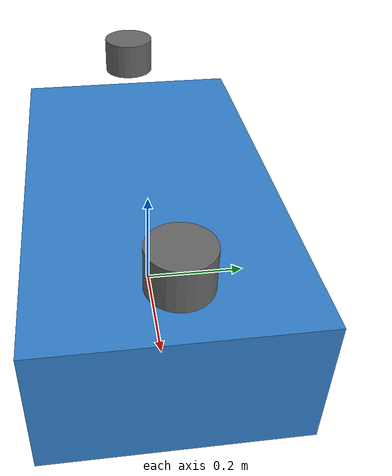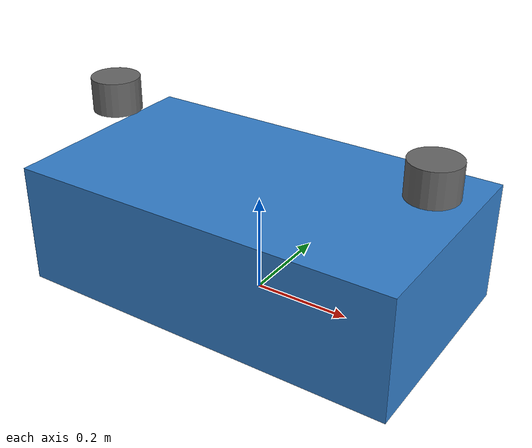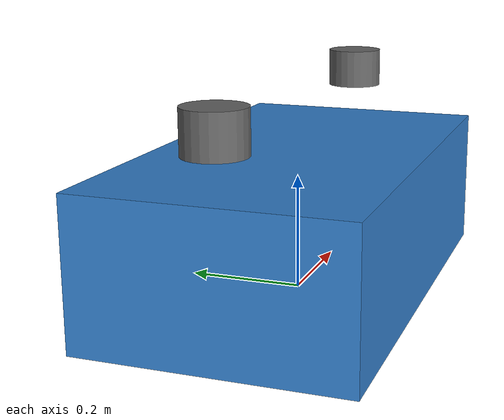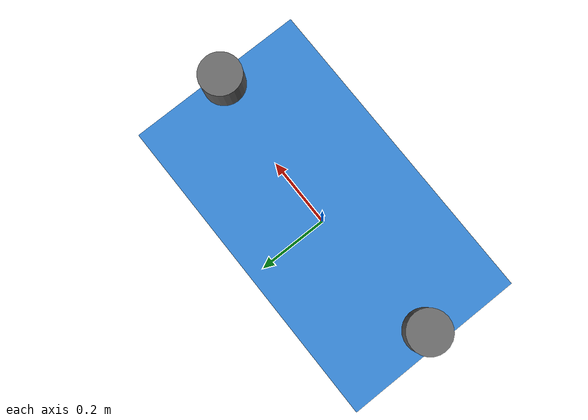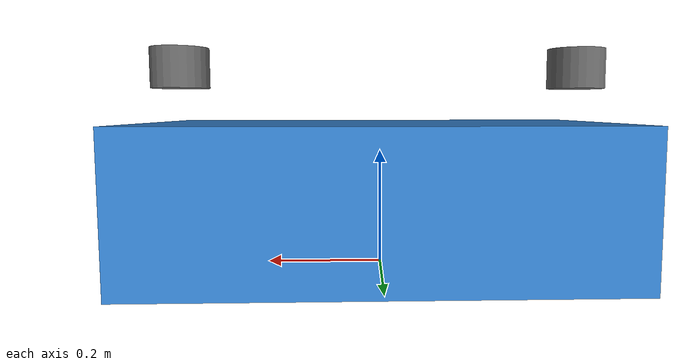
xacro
<?xml version="1.0"?>
<robot xmlns:xacro="http://www.ros.org/wiki/xacro" name="explore_bot">

  <!-- rear_lidar: true adds a second LiDAR at the rear publishing /points_raw/rear -->
  <xacro:arg name="rear_lidar" default="true"/>

  <!-- Based on simple_car_jt128_sim.urdf.xacro (sensor chain) + planar_move for driving -->

  <material name="car_body"><color rgba="0.2 0.5 0.8 1.0"/></material>
  <material name="sensor_grey"><color rgba="0.4 0.4 0.4 1.0"/></material>

  <xacro:macro name="jt128_lidar" params="sensor_name frame topic">
    <gazebo reference="${frame}">
      <sensor type="ray" name="${sensor_name}">
        <pose>0 0 0 0 0 0</pose>
        <visualize>false</visualize>
        <update_rate>10</update_rate>
        <ray>
          <scan>
            <horizontal>
              <samples>720</samples>
              <resolution>1</resolution>
              <min_angle>-3.14159</min_angle>
              <max_angle>3.14159</max_angle>
            </horizontal>
            <vertical>
              <samples>16</samples>
              <resolution>1</resolution>
              <min_angle>-0.35</min_angle>
              <max_angle>0.25</max_angle>
            </vertical>
          </scan>
          <range>
            <min>0.15</min>
            <max>15.0</max>
            <resolution>0.01</resolution>
          </range>
        </ray>
        <plugin name="${sensor_name}_controller" filename="libgazebo_ros_ray_sensor.so">
          <ros>
            <namespace>/</namespace>
            <remapping>~/out:=${topic}</remapping>
          </ros>
          <output_type>sensor_msgs/PointCloud2</output_type>
          <frame_name>${frame}</frame_name>
        </plugin>
      </sensor>
    </gazebo>
  </xacro:macro>

  <!-- base_footprint (ground projection) -->
  <link name="base_footprint">
    <inertial>
      <mass value="0.001"/>
      <inertia ixx="1e-9" ixy="0" ixz="0" iyy="1e-9" iyz="0" izz="1e-9"/>
    </inertial>
  </link>

  <joint name="base_footprint_joint" type="fixed">
    <origin xyz="0 0 0.125" rpy="0 0 0"/>
    <parent link="base_footprint"/>
    <child link="base_link"/>
  </joint>

  <!-- base_link: box body -->
  <link name="base_link">
    <inertial>
      <mass value="8.0"/>
      <inertia ixx="0.2" ixy="0" ixz="0" iyy="0.3" iyz="0" izz="0.3"/>
    </inertial>
    <visual>
      <geometry><box size="0.80 0.45 0.25"/></geometry>
      <material name="car_body"/>
    </visual>
    <collision>
      <origin xyz="0 0 -0.06" rpy="0 0 0"/>
      <geometry><box size="0.70 0.38 0.08"/></geometry>
    </collision>
  </link>

  <!-- front LiDAR (canonical frame, same position as jt128_front_link) -->
  <joint name="lidar_joint" type="fixed">
    <origin xyz="0.35 0.0 0.22" rpy="0 0 0"/>
    <parent link="base_link"/>
    <child link="lidar_link"/>
  </joint>

  <link name="lidar_link">
    <inertial>
      <mass value="0.01"/>
      <inertia ixx="1e-6" ixy="0" ixz="0" iyy="1e-6" iyz="0" izz="1e-6"/>
    </inertial>
    <visual>
      <geometry><cylinder radius="0.05" length="0.07"/></geometry>
      <material name="sensor_grey"/>
    </visual>
  </link>

  <!-- rear LiDAR: mirrored position, rotated 180 deg so sensor forward faces backward -->
  <xacro:if value="$(arg rear_lidar)">
    <joint name="lidar_rear_joint" type="fixed">
      <origin xyz="-0.35 0.0 0.22" rpy="0 0 3.14159"/>
      <parent link="base_link"/>
      <child link="lidar_rear_link"/>
    </joint>

    <link name="lidar_rear_link">
      <inertial>
        <mass value="0.01"/>
        <inertia ixx="1e-6" ixy="0" ixz="0" iyy="1e-6" iyz="0" izz="1e-6"/>
      </inertial>
      <visual>
        <geometry><cylinder radius="0.05" length="0.07"/></geometry>
        <material name="sensor_grey"/>
      </visual>
    </link>
  </xacro:if>

  <!-- ======== NOT static: robot must be movable for planar_move plugin ======== -->
  <gazebo>
    <static>false</static>
  </gazebo>

  <!-- ======== Gazebo planar_move: replaces DLIO odom + genisom velocity ======== -->
  <!-- Publishes /odom + TF odom→base_footprint; subscribes /cmd_vel -->
  <gazebo>
    <plugin name="planar_move_controller" filename="libgazebo_ros_planar_move.so">
      <ros>
        <namespace>/</namespace>
        <remapping>cmd_vel:=cmd_vel</remapping>
        <remapping>odom:=odom</remapping>
      </ros>
      <commandTopic>cmd_vel</commandTopic>
      <odometryTopic>odom</odometryTopic>
      <odometryFrame>odom</odometryFrame>
      <odometryRate>50.0</odometryRate>
      <robotBaseFrame>base_footprint</robotBaseFrame>
    </plugin>
  </gazebo>

  <!-- ======== front LiDAR: /points_raw (the only cloud the nav stack consumes) ======== -->
  <xacro:jt128_lidar sensor_name="explore_lidar" frame="lidar_link" topic="/points_raw"/>

  <!-- ======== rear LiDAR: /points_raw/rear (optional second slot, see macro doc) ======== -->
  <xacro:if value="$(arg rear_lidar)">
    <xacro:jt128_lidar sensor_name="explore_lidar_rear" frame="lidar_rear_link" topic="/points_raw/rear"/>
  </xacro:if>

</robot>
